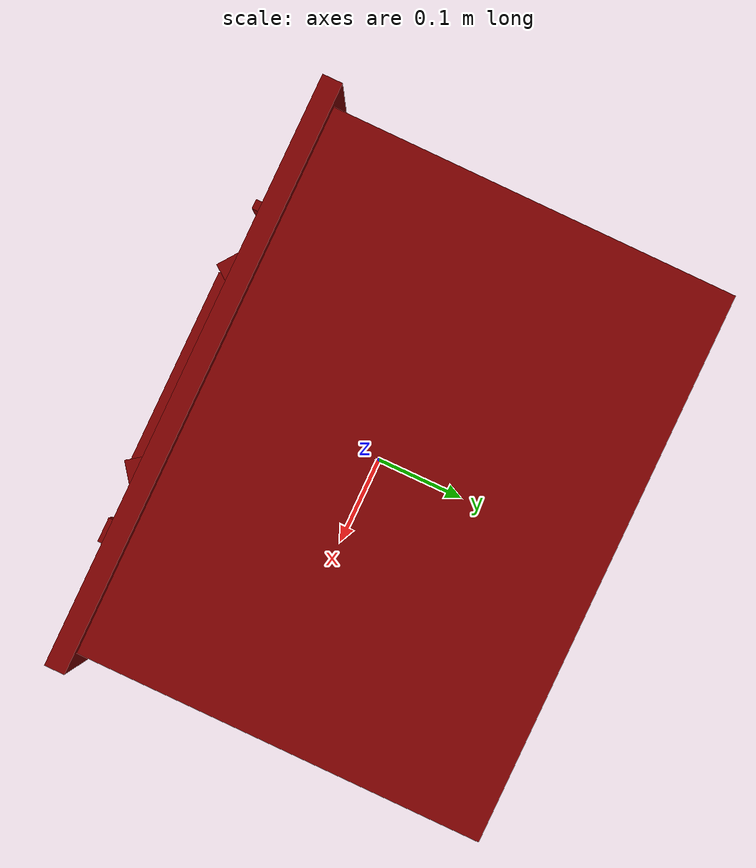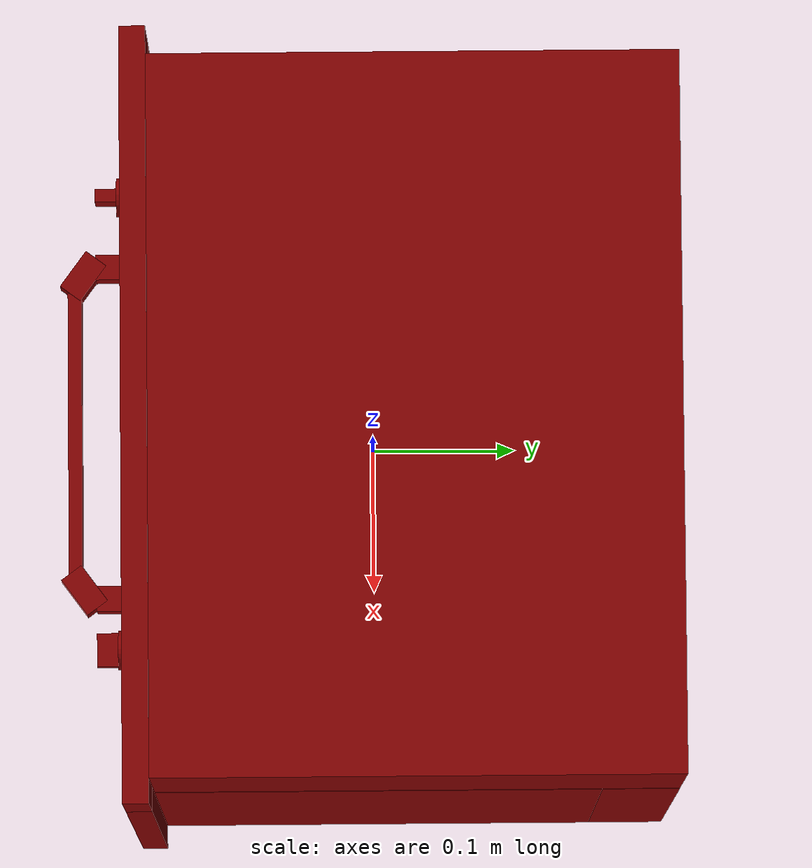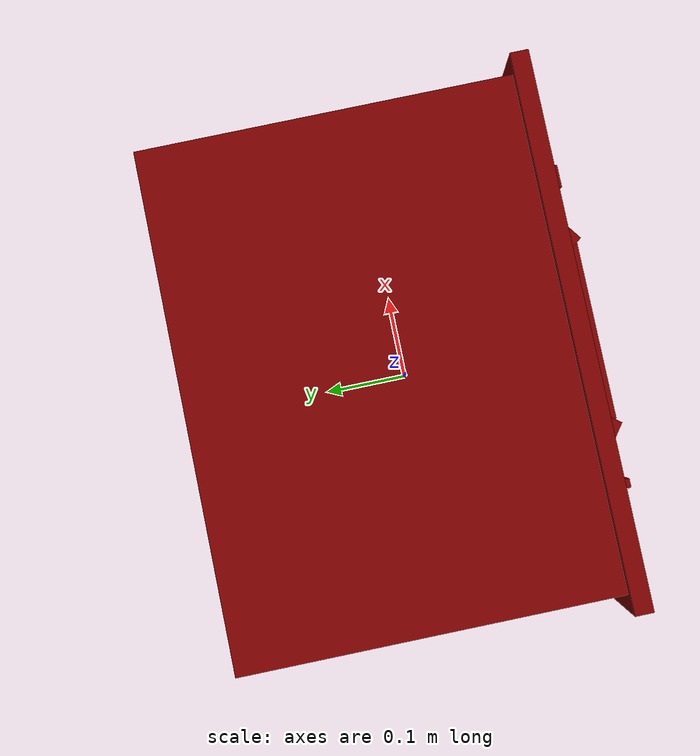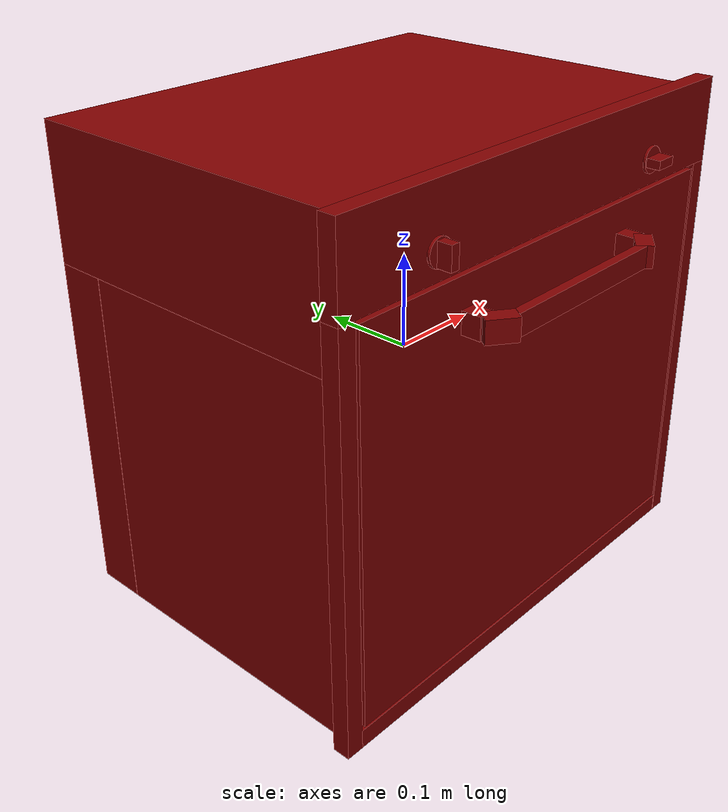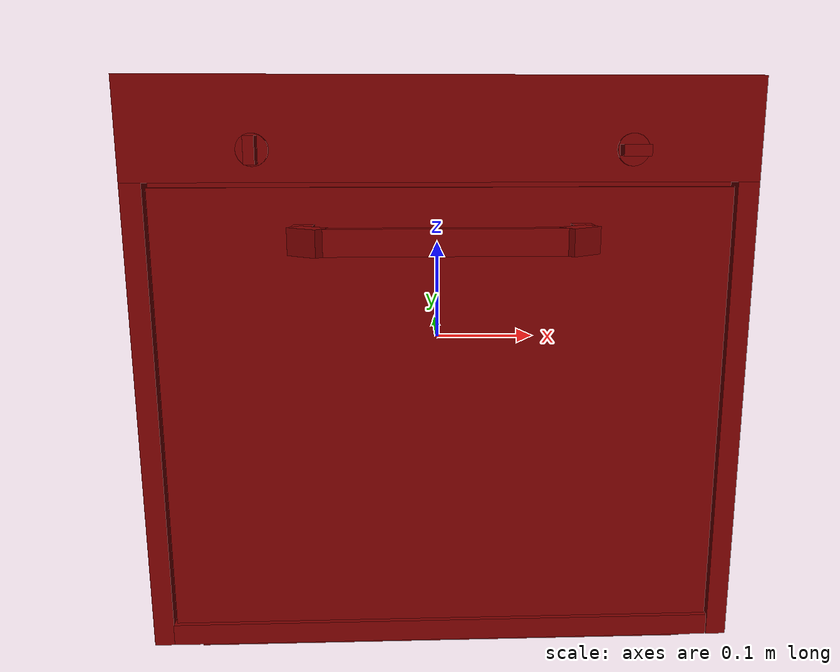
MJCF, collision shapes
<?xml version='1.0' encoding='UTF-8'?>
<mujoco model="model">
  <option timestep="0.002" gravity="0.0 0.0 -9.81"/>
  <compiler angle="radian"/>
  <asset>
    <mesh file="visuals/door.obj" name="door_vis"/>
    <mesh file="visuals/knob_temp.obj" name="knob_temp_vis"/>
    <mesh file="visuals/knob_time.obj" name="knob_time_vis"/>
    <mesh file="visuals/Body001.obj" name="Body001_vis"/>
    <mesh file="visuals/rack0.obj" name="rack0_vis"/>
    <mesh file="visuals/rack1.obj" name="rack1_vis"/>
    <texture file="visuals/T_BC001.png" name="Body001_material" type="2d"/>
    <material name="Body001_material" rgba="1 1 1 1.0" texture="Body001_material" shininess="0.1" specular="6"/>
    <texture file="visuals/T_BC001.png" name="door_material" type="2d"/>
    <material name="door_material" rgba="1 1 1 1.0" texture="door_material" shininess="0.1" specular="6"/>
    <texture file="visuals/T_BC001.png" name="knob_temp_material" type="2d"/>
    <material name="knob_temp_material" rgba="1 1 1 1.0" texture="knob_temp_material" shininess="0.1" specular="6"/>
    <texture file="visuals/T_BC001.png" name="knob_time_material" type="2d"/>
    <material name="knob_time_material" rgba="1 1 1 1.0" texture="knob_time_material" shininess="0.1" specular="6"/>
    <texture file="visuals/T_BC001.png" name="rack0_material" type="2d"/>
    <material name="rack0_material" rgba="1 1 1 1.0" texture="rack0_material" shininess="0.1" specular="6"/>
    <texture file="visuals/T_BC001.png" name="rack1_material" type="2d"/>
    <material name="rack1_material" rgba="1 1 1 1.0" texture="rack1_material" shininess="0.1" specular="6"/>
  </asset>
  <default>
    <default class="visual">
      <geom conaffinity="0" contype="0" group="1" type="mesh"/>
    </default>
    <default class="collision">
      <geom group="0" rgba="0.5 0 0 0.5"/>
    </default>
    <default class="spawn">
      <geom group="0" rgba="1 1 1 0.5" contype="0" conaffinity="0"/>
      <site group="0" rgba="1 1 1 0.5"/>
    </default>
    <default class="region">
      <geom group="1" conaffinity="0" contype="0" rgba="0 1 0 0"/>
    </default>
  </default>
  <worldbody>
    <body>
      <body name="object">
        <geom mesh="Body001_vis" type="mesh" solimp="0.998 0.998 0.001" solref="0.001 1" friction="0.95 0.3 0.1" class="visual" material="Body001_material"/>
        <geom class="collision" type="box" pos="0.00041502993553876877 0.18421366810798645 -0.0738401785492897" size="0.24796797335147858 0.026835963129997253 0.18237464129924774" quat="1.0 0.0 0.0 0.0"/>
        <geom class="collision" type="box" pos="0.0002220855822088197 0.028663085773587227 0.178770050406456" size="0.247785285115242 0.18238581717014313 0.0700862929224968" quat="1.0 0.0 0.0 0.0"/>
        <geom class="collision" type="box" pos="-0.23412282764911652 0.0013668909668922424 -0.0738401785492897" size="0.013430922292172909 0.15575212240219116 0.1823747158050537" quat="1.0 0.0 0.0 0.0"/>
        <geom class="collision" type="box" pos="0.23535005748271942 0.0013668909668922424 -0.0738401785492897" size="0.01310726534575224 0.15575216710567474 0.1823747456073761" quat="1.0 0.0 0.0 0.0"/>
        <geom class="collision" type="box" pos="-1.7404090613126755e-08 -0.16255949437618256 0.2133364975452423" size="0.2655993103981018 0.008992962539196014 0.042879022657871246" quat="1.0 0.0 0.0 0.0"/>
        <geom class="collision" type="box" pos="0.256513774394989 -0.16255949437618256 -0.03999689966440201" size="0.009086232632398605 0.008992963470518589 0.2102941870689392" quat="1.0 0.0 0.0 0.0"/>
        <geom class="collision" type="box" pos="-0.2565073072910309 -0.16255949437618256 -0.03999689966440201" size="0.009092685766518116 0.008992964401841164 0.2102942168712616" quat="1.0 0.0 0.0 0.0"/>
        <geom class="collision" type="box" pos="0.0006272203754633665 -0.0031186528503894806 -0.22285035252571106" size="0.22433438897132874 0.16037480533123016 0.03336525708436966" quat="1.0 0.0 0.0 0.0"/>
        <geom class="collision" type="box" pos="-0.0006274860934354365 -0.16255949437618256 -0.24046172201633453" size="0.247222438454628 0.008992966264486313 0.009830020368099213" quat="1.0 0.0 0.0 0.0"/>
        <geom class="collision" type="box" pos="0.21699444949626923 0.003471721662208438 -0.14920172095298767" size="0.0015671479050070047 0.13912588357925415 0.00141197070479393" quat="1.0 0.0 0.0 0.0"/>
        <geom class="collision" type="box" pos="0.21699444949626923 0.003471721662208438 -0.11254551261663437" size="0.0015671487199142575 0.13912592828273773 0.0014119715197011828" quat="1.0 0.0 0.0 0.0"/>
        <geom class="collision" type="box" pos="0.21699444949626923 0.003471721662208438 -0.042892590165138245" size="0.0015671489527449012 0.13912594318389893 0.0014119717525318265" quat="1.0 0.0 0.0 0.0"/>
        <geom class="collision" type="box" pos="0.21699444949626923 0.003471721662208438 -0.07759950309991837" size="0.0015671493019908667 0.1391259729862213 0.001411972101777792" quat="1.0 0.0 0.0 0.0"/>
        <geom class="collision" type="box" pos="0.21699444949626923 0.003471721662208438 -0.0071997311897575855" size="0.0015671495348215103 0.1391259878873825 0.0014119723346084356" quat="1.0 0.0 0.0 0.0"/>
        <geom class="collision" type="box" pos="0.21699444949626923 0.0019513515289872885 0.030285393819212914" size="0.001567149767652154 0.1391260027885437 0.0014119725674390793" quat="1.0 0.0 0.0 0.0"/>
        <geom class="collision" type="box" pos="0.21699444949626923 0.0019513515289872885 0.0636744350194931" size="0.0015671501168981194 0.1391260176897049 0.0014119729166850448" quat="1.0 0.0 0.0 0.0"/>
        <geom class="collision" type="box" pos="-0.21583391726016998 0.0019513515289872885 0.0636744350194931" size="0.001567150349728763 0.1391260325908661 0.0014119731495156884" quat="1.0 0.0 0.0 0.0"/>
        <geom class="collision" type="box" pos="-0.21583391726016998 0.0019513515289872885 0.030285393819212914" size="0.0015671505825594068 0.13912604749202728 0.001411973382346332" quat="1.0 0.0 0.0 0.0"/>
        <geom class="collision" type="box" pos="-0.21583391726016998 0.003471721662208438 -0.0071997311897575855" size="0.0015671509318053722 0.13912607729434967 0.0014119737315922976" quat="1.0 0.0 0.0 0.0"/>
        <geom class="collision" type="box" pos="-0.21583391726016998 0.003471721662208438 -0.07759950309991837" size="0.001567151164636016 0.13912609219551086 0.0014119739644229412" quat="1.0 0.0 0.0 0.0"/>
        <geom class="collision" type="box" pos="-0.21583391726016998 0.003471721662208438 -0.042892590165138245" size="0.0015671513974666595 0.13912610709667206 0.0014119741972535849" quat="1.0 0.0 0.0 0.0"/>
        <geom class="collision" type="box" pos="-0.21583391726016998 0.003471721662208438 -0.11254551261663437" size="0.001567151746712625 0.13912612199783325 0.0014119745464995503" quat="1.0 0.0 0.0 0.0"/>
        <geom class="collision" type="box" pos="-0.21583391726016998 0.003471721662208438 -0.14920172095298767" size="0.0015671519795432687 0.13912613689899445 0.001411974779330194" quat="1.0 0.0 0.0 0.0"/>
        <body name="door">
          <joint axis="1.0 0.0 0.0" pos="0.00012227712431922555 -0.17155248648487031 -0.22806829027831554" limited="true" name="door_joint" range="0.0 1.15" type="hinge" damping="1" frictionloss="1" armature="1" stiffness="2"/>
          <geom mesh="door_vis" type="mesh" solimp="0.998 0.998 0.001" solref="0.001 1" friction="0.95 0.3 0.1" class="visual" material="door_material"/>
          <geom class="collision" type="box" pos="0.00012227712431922555 -0.1686035543680191 -0.03085756115615368" size="0.2441321760416031 0.0029489321168512106 0.19721072912216187" quat="1.0 0.0 0.0 0.0" name="door_main"/>
          <geom class="collision" type="box" pos="0.0008243577904067934 -0.2066061645746231 0.1251366287469864" size="0.09818431735038757 0.0047048102132976055 0.011084760539233685" quat="1.0 0.0 0.0 0.0" name="door_handle_main"/>
          <geom class="collision" type="box" pos="-0.11562653630971909 -0.18209116160869598 0.1251366287469864" size="0.008663634769618511 0.009878952987492085 0.011084760539233685" quat="1.0 0.0 0.0 0.0"/>
          <geom class="collision" type="box" pos="-0.10972652584314346 -0.20057404041290283 0.12512733042240143" size="0.008663634769618511 0.015218540094792843 0.011240941472351551" quat="0.8923476338386536 0.0 0.0 0.45134878158569336"/>
          <geom class="collision" type="box" pos="0.10966231673955917 -0.20057404041290283 0.12512733042240143" size="0.008663634769618511 0.015218540094792843 0.011240941472351551" quat="0.8923476934432983 0.0 -0.0 -0.4513486623764038"/>
          <geom class="collision" type="box" pos="0.1155623272061348 -0.18209116160869598 0.1251366287469864" size="0.008663634769618511 0.009878952987492085 0.011084760539233685" quat="1.0 0.0 0.0 0.0"/>
        </body>
        <body name="knob_temp">
          <joint axis="0.0 1.0 0.0" pos="0.15685763955116272 -0.1805293709039688 0.1968986541032791" limited="true" name="knob_temp_joint" range="0.0 3.2288591161895095" type="hinge" damping="0.05" frictionloss="0.75" armature="1"/>
          <geom mesh="knob_temp_vis" type="mesh" solimp="0.998 0.998 0.001" solref="0.001 1" friction="0.95 0.3 0.1" class="visual" material="knob_temp_material"/>
          <geom class="collision" type="box" pos="0.15684615075588226 -0.18233390152454376 0.19662560522556305" size="0.011466962285339832 0.007394264917820692 0.004527239594608545" quat="1.0 0.0 0.0 0.0" name="knob_temp_main" friction="100 0.5 0.01"/>
          <geom class="collision" type="cylinder" pos="0.1569620966911316 -0.1737855225801468 0.1968647539615631" size="0.013401823118329048 0.0014070678735151887" quat="0.7071067094802856 0.7071068286895752 0.0 0.0" friction="100 0.5 0.01"/>
        </body>
        <body name="knob_time">
          <joint axis="0.0 1.0 0.0" pos="-0.15563999116420746 -0.1805293709039688 0.19689437747001648" limited="true" name="knob_time_joint" range="0.0 4.101523742186674" type="hinge" damping="0.05" frictionloss="0.75" armature="1"/>
          <geom mesh="knob_time_vis" type="mesh" solimp="0.998 0.998 0.001" solref="0.001 1" friction="0.95 0.3 0.1" class="visual" material="knob_time_material"/>
          <geom class="collision" type="cylinder" pos="-0.1556844860315323 -0.1737855225801468 0.1968647539615631" size="0.013401823118329048 0.0014070678735151887" quat="0.7071067094802856 0.7071068286895752 0.0 0.0" friction="100 0.5 0.01"/>
          <geom class="collision" type="box" pos="-0.15580043196678162 -0.18233390152454376 0.19662560522556305" size="0.004527238663285971 0.007394264917820692 0.011466962285339832" quat="1.0 0.0 0.0 0.0" name="knob_time_main" friction="100 0.5 0.01"/>
        </body>
        <body name="rack0">
          <geom class="region" name="reg_rack0" type="box" pos="0.000829845666885376 0.003217563033103943 -0.05335867311805487" size="0.19968627190589905 0.14956873452663422 0.04162637779861689"/>
          <joint axis="0.0 -1.0 0.0" pos="0.0008723735809326172 0.0033347681164741516 -0.09002819657325745" limited="true" name="rack0_joint" range="0.0 0.25" type="slide" damping="1" frictionloss="1" armature=".01" stiffness="0.05"/>
          <geom mesh="rack0_vis" type="mesh" solimp="0.998 0.998 0.001" solref="0.001 1" friction="0.95 0.3 0.1" class="visual" material="rack0_material"/>
          <geom class="collision" type="box" pos="0.0009487515198998153 0.003334800247102976 -0.10384302586317062" size="0.20691101253032684 0.15409642457962036 0.00428262772038579" quat="1.0 0.0 0.0 0.0"/>
          <geom class="collision" type="box" pos="0.20724079012870789 0.0033348051365464926 -0.08814318478107452" size="0.002178747672587633 0.15409643948078156 0.011319215409457684" quat="1.0 0.0 0.0 0.0"/>
          <geom class="collision" type="box" pos="0.21089664101600647 0.0033348051365464926 -0.0737205296754837" size="0.00453159399330616 0.15409645438194275 0.0021625764202326536" quat="1.0 0.0 0.0 0.0"/>
          <geom class="collision" type="box" pos="-0.20923051238059998 0.0033348051365464926 -0.0737205296754837" size="0.004607948008924723 0.15409648418426514 0.002162576885893941" quat="1.0 0.0 0.0 0.0"/>
          <geom class="collision" type="box" pos="-0.2054983228445053 0.0033348051365464926 -0.08814318478107452" size="0.0021787486039102077 0.15409649908542633 0.01131922286003828" quat="1.0 0.0 0.0 0.0"/>
        </body>
        <body name="rack1">
          <geom class="region" name="reg_rack1" type="box" pos="0.0012239962816238403 0.0028054192662239075 0.05492791929282248" size="0.20923007822036743 0.14998087829351425 0.048935779904946686"/>
          <joint axis="0.0 -1.0 0.0" pos="0.0009681954979896545 0.0033347532153129578 -0.0017881738021969795" limited="true" name="rack1_joint" range="0.0 0.25" type="slide" damping="1" frictionloss="1" armature=".01" stiffness="0.05"/>
          <geom mesh="rack1_vis" type="mesh" solimp="0.998 0.998 0.001" solref="0.001 1" friction="0.95 0.3 0.1" class="visual" material="rack1_material"/>
          <geom class="collision" type="box" pos="0.0009635542519390583 0.0028248464222997427 -0.002823977265506983" size="0.2138444185256958 0.1545701026916504 0.004282655194401741" quat="1.0 0.0 0.0 0.0"/>
        </body>
        <geom class="region" name="reg_int" type="box" pos="0.000729687511920929 0.0019033104181289673 -0.04044531285762787" size="0.20972438699007034 0.15043592250347138 0.14430901205539703"/>
        <geom class="region" name="reg_main" type="box" pos="0.0 0.01974862813949585 0.0" size="0.2666000256538391 0.1923011074066162 0.2572156915664673"/>
      </body>
    </body>
  </worldbody>
  <actuator>
    <motor name="door_joint_actuator" joint="door_joint" gear="50"/>
    <motor name="knob_temp_joint_actuator" joint="knob_temp_joint" gear="50"/>
    <motor name="knob_time_joint_actuator" joint="knob_time_joint" gear="50"/>
    <motor name="rack0_joint_actuator" joint="rack0_joint" gear="50"/>
    <motor name="rack1_joint_actuator" joint="rack1_joint" gear="50"/>
  </actuator>
</mujoco>
